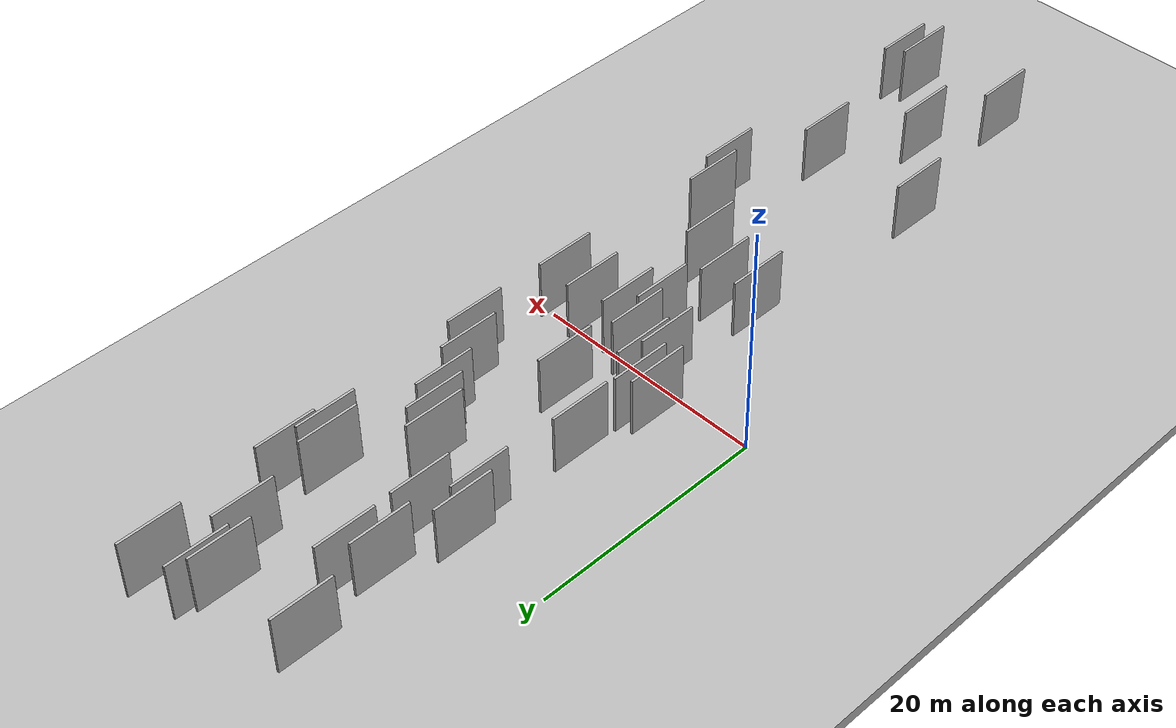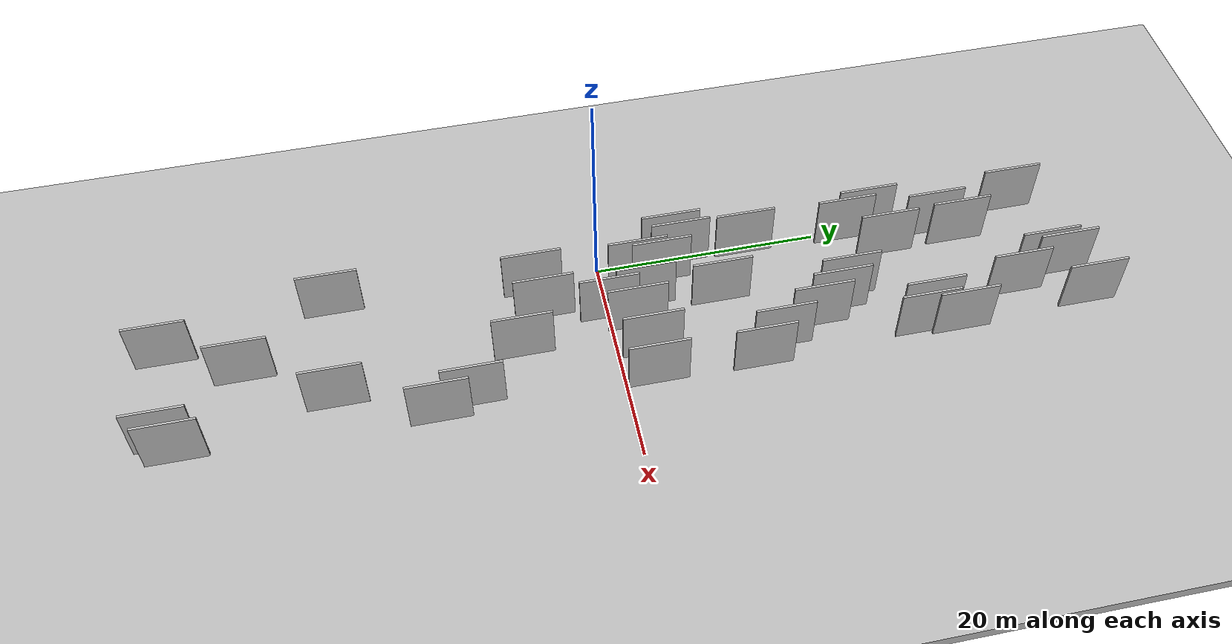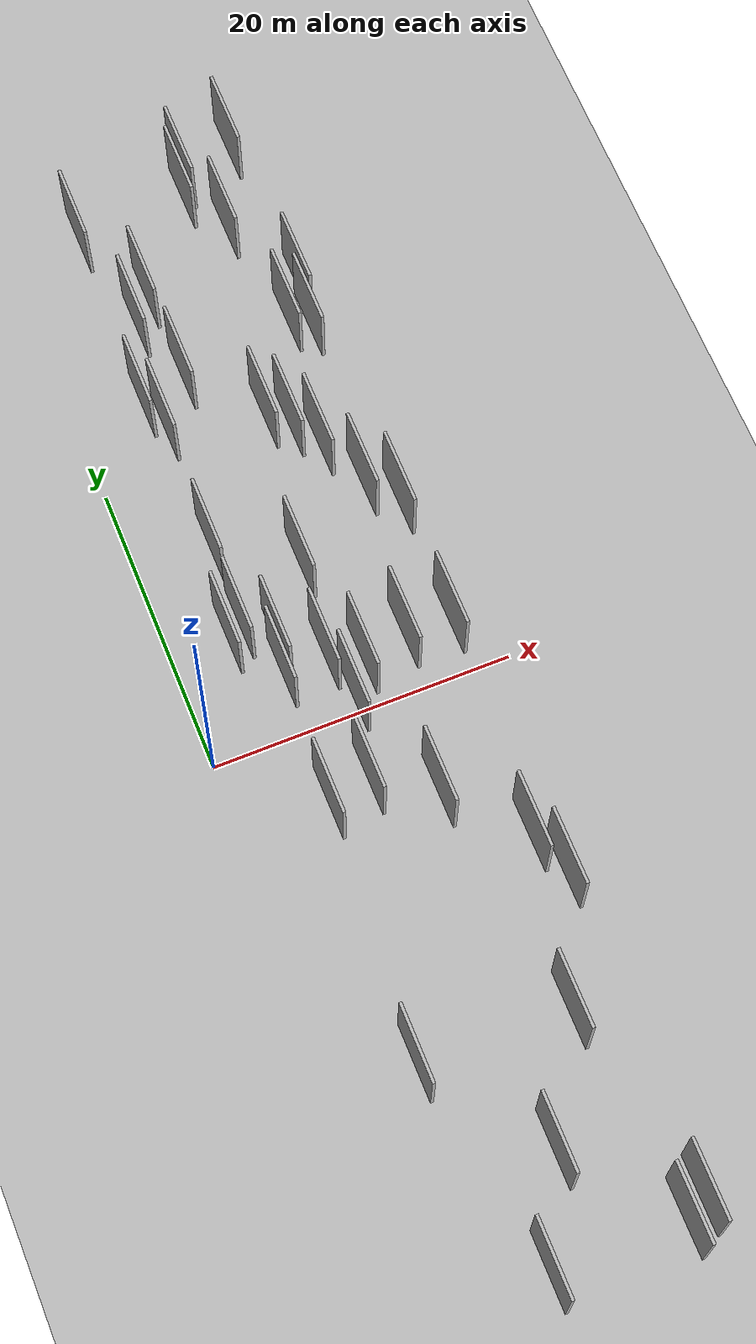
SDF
<?xml version="1.0" encoding="utf-8"?>

<sdf version="1.6">

   <world name="default">

      <gui fullscreen="0">

         <camera name="user_camera">

            <pose>-15 0 4.57585 0 0 0</pose>

            <view_controller>orbit</view_controller>

         </camera>

      </gui>

      <scene>

         <sky>

           <clouds>

             <speed>12</speed>

           </clouds>

         </sky>

         <ambient>0.4 0.4 0.4 1</ambient>

         <background>0.7 0.7 0.7 1</background>

         <shadows>1</shadows>

      </scene>

      <gravity>0 0 -9.8066</gravity>

      <magnetic_field>6e-06 2.3e-05 -4.2e-05</magnetic_field>

      <physics default="0" name="default_physics" type="ode">

         <ode>

            <solver>

               <type>quick</type>

               <iters>10</iters>

               <sor>1.0</sor>

               <use_dynamic_moi_rescaling>0</use_dynamic_moi_rescaling>

            </solver>

            <constraints>

               <cfm>0</cfm>

               <erp>0.2</erp>

               <contact_max_correcting_vel>100</contact_max_correcting_vel>

               <contact_surface_layer>0.001</contact_surface_layer>

            </constraints>

         </ode>

         <max_step_size>0.004</max_step_size>

         <real_time_factor>1</real_time_factor>

         <real_time_update_rate>250</real_time_update_rate>

      </physics>

      <light name="sun" type="directional">

         <cast_shadows>1</cast_shadows>

         <pose>0 0 10 0 0 0</pose>

         <diffuse>0.8 0.8 0.8 1</diffuse>

         <specular>0.2 0.2 0.2 1</specular>

         <attenuation>

            <range>1000</range>

            <constant>0.9</constant>

            <linear>0.01</linear>

            <quadratic>0.001</quadratic>

         </attenuation>

         <direction>-0.5 0.1 -0.9</direction>

      </light>

      <include>

         <name>ground_plane_1</name>

         <uri>model://HANNAS_ground_plane</uri>

         <pose>0 0 0  0 0 0</pose>

      </include>

      <include>

         <name>ground_plane_2</name>

         <uri>model://HANNAS_ground_plane</uri>

         <pose>100 0 0  0 0 0</pose>

      </include>

      <model name="HANNAS_wall_1">

         <static>1</static>

         <pose frame="">16.1266 -36.1026 5.0 0.000000 0.000000 1.570796</pose>

         <link name="link">

            <pose frame="">0 0 2.50 0 0 0</pose>

            <collision name="collision">

               <geometry>

                  <box>

                     <size>5.00 0.2 5.00</size>

                  </box>

               </geometry>

               <max_contacts>10</max_contacts>

               <surface>

                  <contact>

                     <ode/>

                  </contact>

                  <bounce/>

                  <friction>

                     <torsional>

                        <ode/>

                     </torsional>

                     <ode/>

                  </friction>

               </surface>

            </collision>

            <visual name="visual">

               <cast_shadows>0</cast_shadows>

               <geometry>

                  <box>

                     <size>5.00 0.2 5.00</size>

                  </box>

               </geometry>

               <material>

                  <script>

                     <uri>model://HANNAS_wall/materials/scripts</uri>

                     <uri>model://HANNAS_wall/materials/textures</uri>

                     <name>vrc/HANNAS_wall</name>

                  </script>

               </material>

            </visual>

            <self_collide>0</self_collide>

            <enable_wind>0</enable_wind>

            <kinematic>0</kinematic>

         </link>

      </model>

      <model name="HANNAS_wall_2">

         <static>1</static>

         <pose frame="">16.7038 10.5861 5.0 0.000000 0.000000 1.570796</pose>

         <link name="link">

            <pose frame="">0 0 2.50 0 0 0</pose>

            <collision name="collision">

               <geometry>

                  <box>

                     <size>5.00 0.2 5.00</size>

                  </box>

               </geometry>

               <max_contacts>10</max_contacts>

               <surface>

                  <contact>

                     <ode/>

                  </contact>

                  <bounce/>

                  <friction>

                     <torsional>

                        <ode/>

                     </torsional>

                     <ode/>

                  </friction>

               </surface>

            </collision>

            <visual name="visual">

               <cast_shadows>0</cast_shadows>

               <geometry>

                  <box>

                     <size>5.00 0.2 5.00</size>

                  </box>

               </geometry>

               <material>

                  <script>

                     <uri>model://HANNAS_wall/materials/scripts</uri>

                     <uri>model://HANNAS_wall/materials/textures</uri>

                     <name>vrc/HANNAS_wall</name>

                  </script>

               </material>

            </visual>

            <self_collide>0</self_collide>

            <enable_wind>0</enable_wind>

            <kinematic>0</kinematic>

         </link>

      </model>

      <model name="HANNAS_wall_3">

         <static>1</static>

         <pose frame="">4.0169 -23.0541 5.0 0.000000 0.000000 1.570796</pose>

         <link name="link">

            <pose frame="">0 0 2.50 0 0 0</pose>

            <collision name="collision">

               <geometry>

                  <box>

                     <size>5.00 0.2 5.00</size>

                  </box>

               </geometry>

               <max_contacts>10</max_contacts>

               <surface>

                  <contact>

                     <ode/>

                  </contact>

                  <bounce/>

                  <friction>

                     <torsional>

                        <ode/>

                     </torsional>

                     <ode/>

                  </friction>

               </surface>

            </collision>

            <visual name="visual">

               <cast_shadows>0</cast_shadows>

               <geometry>

                  <box>

                     <size>5.00 0.2 5.00</size>

                  </box>

               </geometry>

               <material>

                  <script>

                     <uri>model://HANNAS_wall/materials/scripts</uri>

                     <uri>model://HANNAS_wall/materials/textures</uri>

                     <name>vrc/HANNAS_wall</name>

                  </script>

               </material>

            </visual>

            <self_collide>0</self_collide>

            <enable_wind>0</enable_wind>

            <kinematic>0</kinematic>

         </link>

      </model>

      <model name="HANNAS_wall_4">

         <static>1</static>

         <pose frame="">8.0384 -5.8655 5.0 0.000000 0.000000 1.570796</pose>

         <link name="link">

            <pose frame="">0 0 2.50 0 0 0</pose>

            <collision name="collision">

               <geometry>

                  <box>

                     <size>5.00 0.2 5.00</size>

                  </box>

               </geometry>

               <max_contacts>10</max_contacts>

               <surface>

                  <contact>

                     <ode/>

                  </contact>

                  <bounce/>

                  <friction>

                     <torsional>

                        <ode/>

                     </torsional>

                     <ode/>

                  </friction>

               </surface>

            </collision>

            <visual name="visual">

               <cast_shadows>0</cast_shadows>

               <geometry>

                  <box>

                     <size>5.00 0.2 5.00</size>

                  </box>

               </geometry>

               <material>

                  <script>

                     <uri>model://HANNAS_wall/materials/scripts</uri>

                     <uri>model://HANNAS_wall/materials/textures</uri>

                     <name>vrc/HANNAS_wall</name>

                  </script>

               </material>

            </visual>

            <self_collide>0</self_collide>

            <enable_wind>0</enable_wind>

            <kinematic>0</kinematic>

         </link>

      </model>

      <model name="HANNAS_wall_5">

         <static>1</static>

         <pose frame="">13.6140 33.2601 5.0 0.000000 0.000000 1.570796</pose>

         <link name="link">

            <pose frame="">0 0 2.50 0 0 0</pose>

            <collision name="collision">

               <geometry>

                  <box>

                     <size>5.00 0.2 5.00</size>

                  </box>

               </geometry>

               <max_contacts>10</max_contacts>

               <surface>

                  <contact>

                     <ode/>

                  </contact>

                  <bounce/>

                  <friction>

                     <torsional>

                        <ode/>

                     </torsional>

                     <ode/>

                  </friction>

               </surface>

            </collision>

            <visual name="visual">

               <cast_shadows>0</cast_shadows>

               <geometry>

                  <box>

                     <size>5.00 0.2 5.00</size>

                  </box>

               </geometry>

               <material>

                  <script>

                     <uri>model://HANNAS_wall/materials/scripts</uri>

                     <uri>model://HANNAS_wall/materials/textures</uri>

                     <name>vrc/HANNAS_wall</name>

                  </script>

               </material>

            </visual>

            <self_collide>0</self_collide>

            <enable_wind>0</enable_wind>

            <kinematic>0</kinematic>

         </link>

      </model>

      <model name="HANNAS_wall_6">

         <static>1</static>

         <pose frame="">11.8164 36.4727 5.0 0.000000 0.000000 1.570796</pose>

         <link name="link">

            <pose frame="">0 0 2.50 0 0 0</pose>

            <collision name="collision">

               <geometry>

                  <box>

                     <size>5.00 0.2 5.00</size>

                  </box>

               </geometry>

               <max_contacts>10</max_contacts>

               <surface>

                  <contact>

                     <ode/>

                  </contact>

                  <bounce/>

                  <friction>

                     <torsional>

                        <ode/>

                     </torsional>

                     <ode/>

                  </friction>

               </surface>

            </collision>

            <visual name="visual">

               <cast_shadows>0</cast_shadows>

               <geometry>

                  <box>

                     <size>5.00 0.2 5.00</size>

                  </box>

               </geometry>

               <material>

                  <script>

                     <uri>model://HANNAS_wall/materials/scripts</uri>

                     <uri>model://HANNAS_wall/materials/textures</uri>

                     <name>vrc/HANNAS_wall</name>

                  </script>

               </material>

            </visual>

            <self_collide>0</self_collide>

            <enable_wind>0</enable_wind>

            <kinematic>0</kinematic>

         </link>

      </model>

      <model name="HANNAS_wall_7">

         <static>1</static>

         <pose frame="">13.5717 2.0889 5.0 0.000000 0.000000 1.570796</pose>

         <link name="link">

            <pose frame="">0 0 2.50 0 0 0</pose>

            <collision name="collision">

               <geometry>

                  <box>

                     <size>5.00 0.2 5.00</size>

                  </box>

               </geometry>

               <max_contacts>10</max_contacts>

               <surface>

                  <contact>

                     <ode/>

                  </contact>

                  <bounce/>

                  <friction>

                     <torsional>

                        <ode/>

                     </torsional>

                     <ode/>

                  </friction>

               </surface>

            </collision>

            <visual name="visual">

               <cast_shadows>0</cast_shadows>

               <geometry>

                  <box>

                     <size>5.00 0.2 5.00</size>

                  </box>

               </geometry>

               <material>

                  <script>

                     <uri>model://HANNAS_wall/materials/scripts</uri>

                     <uri>model://HANNAS_wall/materials/textures</uri>

                     <name>vrc/HANNAS_wall</name>

                  </script>

               </material>

            </visual>

            <self_collide>0</self_collide>

            <enable_wind>0</enable_wind>

            <kinematic>0</kinematic>

         </link>

      </model>

      <model name="HANNAS_wall_8">

         <static>1</static>

         <pose frame="">14.9016 25.2825 5.0 0.000000 0.000000 1.570796</pose>

         <link name="link">

            <pose frame="">0 0 2.50 0 0 0</pose>

            <collision name="collision">

               <geometry>

                  <box>

                     <size>5.00 0.2 5.00</size>

                  </box>

               </geometry>

               <max_contacts>10</max_contacts>

               <surface>

                  <contact>

                     <ode/>

                  </contact>

                  <bounce/>

                  <friction>

                     <torsional>

                        <ode/>

                     </torsional>

                     <ode/>

                  </friction>

               </surface>

            </collision>

            <visual name="visual">

               <cast_shadows>0</cast_shadows>

               <geometry>

                  <box>

                     <size>5.00 0.2 5.00</size>

                  </box>

               </geometry>

               <material>

                  <script>

                     <uri>model://HANNAS_wall/materials/scripts</uri>

                     <uri>model://HANNAS_wall/materials/textures</uri>

                     <name>vrc/HANNAS_wall</name>

                  </script>

               </material>

            </visual>

            <self_collide>0</self_collide>

            <enable_wind>0</enable_wind>

            <kinematic>0</kinematic>

         </link>

      </model>

      <model name="HANNAS_wall_9">

         <static>1</static>

         <pose frame="">4.8498 20.8579 5.0 0.000000 0.000000 1.570796</pose>

         <link name="link">

            <pose frame="">0 0 2.50 0 0 0</pose>

            <collision name="collision">

               <geometry>

                  <box>

                     <size>5.00 0.2 5.00</size>

                  </box>

               </geometry>

               <max_contacts>10</max_contacts>

               <surface>

                  <contact>

                     <ode/>

                  </contact>

                  <bounce/>

                  <friction>

                     <torsional>

                        <ode/>

                     </torsional>

                     <ode/>

                  </friction>

               </surface>

            </collision>

            <visual name="visual">

               <cast_shadows>0</cast_shadows>

               <geometry>

                  <box>

                     <size>5.00 0.2 5.00</size>

                  </box>

               </geometry>

               <material>

                  <script>

                     <uri>model://HANNAS_wall/materials/scripts</uri>

                     <uri>model://HANNAS_wall/materials/textures</uri>

                     <name>vrc/HANNAS_wall</name>

                  </script>

               </material>

            </visual>

            <self_collide>0</self_collide>

            <enable_wind>0</enable_wind>

            <kinematic>0</kinematic>

         </link>

      </model>

      <model name="HANNAS_wall_10">

         <static>1</static>

         <pose frame="">11.6413 -8.1882 5.0 0.000000 0.000000 1.570796</pose>

         <link name="link">

            <pose frame="">0 0 2.50 0 0 0</pose>

            <collision name="collision">

               <geometry>

                  <box>

                     <size>5.00 0.2 5.00</size>

                  </box>

               </geometry>

               <max_contacts>10</max_contacts>

               <surface>

                  <contact>

                     <ode/>

                  </contact>

                  <bounce/>

                  <friction>

                     <torsional>

                        <ode/>

                     </torsional>

                     <ode/>

                  </friction>

               </surface>

            </collision>

            <visual name="visual">

               <cast_shadows>0</cast_shadows>

               <geometry>

                  <box>

                     <size>5.00 0.2 5.00</size>

                  </box>

               </geometry>

               <material>

                  <script>

                     <uri>model://HANNAS_wall/materials/scripts</uri>

                     <uri>model://HANNAS_wall/materials/textures</uri>

                     <name>vrc/HANNAS_wall</name>

                  </script>

               </material>

            </visual>

            <self_collide>0</self_collide>

            <enable_wind>0</enable_wind>

            <kinematic>0</kinematic>

         </link>

      </model>

      <model name="HANNAS_wall_11">

         <static>1</static>

         <pose frame="">14.7778 -36.9344 5.0 0.000000 0.000000 1.570796</pose>

         <link name="link">

            <pose frame="">0 0 2.50 0 0 0</pose>

            <collision name="collision">

               <geometry>

                  <box>

                     <size>5.00 0.2 5.00</size>

                  </box>

               </geometry>

               <max_contacts>10</max_contacts>

               <surface>

                  <contact>

                     <ode/>

                  </contact>

                  <bounce/>

                  <friction>

                     <torsional>

                        <ode/>

                     </torsional>

                     <ode/>

                  </friction>

               </surface>

            </collision>

            <visual name="visual">

               <cast_shadows>0</cast_shadows>

               <geometry>

                  <box>

                     <size>5.00 0.2 5.00</size>

                  </box>

               </geometry>

               <material>

                  <script>

                     <uri>model://HANNAS_wall/materials/scripts</uri>

                     <uri>model://HANNAS_wall/materials/textures</uri>

                     <name>vrc/HANNAS_wall</name>

                  </script>

               </material>

            </visual>

            <self_collide>0</self_collide>

            <enable_wind>0</enable_wind>

            <kinematic>0</kinematic>

         </link>

      </model>

      <model name="HANNAS_wall_12">

         <static>1</static>

         <pose frame="">4.3469 35.8482 5.0 0.000000 0.000000 1.570796</pose>

         <link name="link">

            <pose frame="">0 0 2.50 0 0 0</pose>

            <collision name="collision">

               <geometry>

                  <box>

                     <size>5.00 0.2 5.00</size>

                  </box>

               </geometry>

               <max_contacts>10</max_contacts>

               <surface>

                  <contact>

                     <ode/>

                  </contact>

                  <bounce/>

                  <friction>

                     <torsional>

                        <ode/>

                     </torsional>

                     <ode/>

                  </friction>

               </surface>

            </collision>

            <visual name="visual">

               <cast_shadows>0</cast_shadows>

               <geometry>

                  <box>

                     <size>5.00 0.2 5.00</size>

                  </box>

               </geometry>

               <material>

                  <script>

                     <uri>model://HANNAS_wall/materials/scripts</uri>

                     <uri>model://HANNAS_wall/materials/textures</uri>

                     <name>vrc/HANNAS_wall</name>

                  </script>

               </material>

            </visual>

            <self_collide>0</self_collide>

            <enable_wind>0</enable_wind>

            <kinematic>0</kinematic>

         </link>

      </model>

      <model name="HANNAS_wall_13">

         <static>1</static>

         <pose frame="">8.5442 2.5810 5.0 0.000000 0.000000 1.570796</pose>

         <link name="link">

            <pose frame="">0 0 2.50 0 0 0</pose>

            <collision name="collision">

               <geometry>

                  <box>

                     <size>5.00 0.2 5.00</size>

                  </box>

               </geometry>

               <max_contacts>10</max_contacts>

               <surface>

                  <contact>

                     <ode/>

                  </contact>

                  <bounce/>

                  <friction>

                     <torsional>

                        <ode/>

                     </torsional>

                     <ode/>

                  </friction>

               </surface>

            </collision>

            <visual name="visual">

               <cast_shadows>0</cast_shadows>

               <geometry>

                  <box>

                     <size>5.00 0.2 5.00</size>

                  </box>

               </geometry>

               <material>

                  <script>

                     <uri>model://HANNAS_wall/materials/scripts</uri>

                     <uri>model://HANNAS_wall/materials/textures</uri>

                     <name>vrc/HANNAS_wall</name>

                  </script>

               </material>

            </visual>

            <self_collide>0</self_collide>

            <enable_wind>0</enable_wind>

            <kinematic>0</kinematic>

         </link>

      </model>

      <model name="HANNAS_wall_14">

         <static>1</static>

         <pose frame="">15.6510 -12.7972 5.0 0.000000 0.000000 1.570796</pose>

         <link name="link">

            <pose frame="">0 0 2.50 0 0 0</pose>

            <collision name="collision">

               <geometry>

                  <box>

                     <size>5.00 0.2 5.00</size>

                  </box>

               </geometry>

               <max_contacts>10</max_contacts>

               <surface>

                  <contact>

                     <ode/>

                  </contact>

                  <bounce/>

                  <friction>

                     <torsional>

                        <ode/>

                     </torsional>

                     <ode/>

                  </friction>

               </surface>

            </collision>

            <visual name="visual">

               <cast_shadows>0</cast_shadows>

               <geometry>

                  <box>

                     <size>5.00 0.2 5.00</size>

                  </box>

               </geometry>

               <material>

                  <script>

                     <uri>model://HANNAS_wall/materials/scripts</uri>

                     <uri>model://HANNAS_wall/materials/textures</uri>

                     <name>vrc/HANNAS_wall</name>

                  </script>

               </material>

            </visual>

            <self_collide>0</self_collide>

            <enable_wind>0</enable_wind>

            <kinematic>0</kinematic>

         </link>

      </model>

      <model name="HANNAS_wall_15">

         <static>1</static>

         <pose frame="">12.2945 18.1889 5.0 0.000000 0.000000 1.570796</pose>

         <link name="link">

            <pose frame="">0 0 2.50 0 0 0</pose>

            <collision name="collision">

               <geometry>

                  <box>

                     <size>5.00 0.2 5.00</size>

                  </box>

               </geometry>

               <max_contacts>10</max_contacts>

               <surface>

                  <contact>

                     <ode/>

                  </contact>

                  <bounce/>

                  <friction>

                     <torsional>

                        <ode/>

                     </torsional>

                     <ode/>

                  </friction>

               </surface>

            </collision>

            <visual name="visual">

               <cast_shadows>0</cast_shadows>

               <geometry>

                  <box>

                     <size>5.00 0.2 5.00</size>

                  </box>

               </geometry>

               <material>

                  <script>

                     <uri>model://HANNAS_wall/materials/scripts</uri>

                     <uri>model://HANNAS_wall/materials/textures</uri>

                     <name>vrc/HANNAS_wall</name>

                  </script>

               </material>

            </visual>

            <self_collide>0</self_collide>

            <enable_wind>0</enable_wind>

            <kinematic>0</kinematic>

         </link>

      </model>

      <model name="HANNAS_wall_16">

         <static>1</static>

         <pose frame="">6.1222 4.4363 5.0 0.000000 0.000000 1.570796</pose>

         <link name="link">

            <pose frame="">0 0 2.50 0 0 0</pose>

            <collision name="collision">

               <geometry>

                  <box>

                     <size>5.00 0.2 5.00</size>

                  </box>

               </geometry>

               <max_contacts>10</max_contacts>

               <surface>

                  <contact>

                     <ode/>

                  </contact>

                  <bounce/>

                  <friction>

                     <torsional>

                        <ode/>

                     </torsional>

                     <ode/>

                  </friction>

               </surface>

            </collision>

            <visual name="visual">

               <cast_shadows>0</cast_shadows>

               <geometry>

                  <box>

                     <size>5.00 0.2 5.00</size>

                  </box>

               </geometry>

               <material>

                  <script>

                     <uri>model://HANNAS_wall/materials/scripts</uri>

                     <uri>model://HANNAS_wall/materials/textures</uri>

                     <name>vrc/HANNAS_wall</name>

                  </script>

               </material>

            </visual>

            <self_collide>0</self_collide>

            <enable_wind>0</enable_wind>

            <kinematic>0</kinematic>

         </link>

      </model>

      <model name="HANNAS_wall_17">

         <static>1</static>

         <pose frame="">9.3733 8.8212 5.0 0.000000 0.000000 1.570796</pose>

         <link name="link">

            <pose frame="">0 0 2.50 0 0 0</pose>

            <collision name="collision">

               <geometry>

                  <box>

                     <size>5.00 0.2 5.00</size>

                  </box>

               </geometry>

               <max_contacts>10</max_contacts>

               <surface>

                  <contact>

                     <ode/>

                  </contact>

                  <bounce/>

                  <friction>

                     <torsional>

                        <ode/>

                     </torsional>

                     <ode/>

                  </friction>

               </surface>

            </collision>

            <visual name="visual">

               <cast_shadows>0</cast_shadows>

               <geometry>

                  <box>

                     <size>5.00 0.2 5.00</size>

                  </box>

               </geometry>

               <material>

                  <script>

                     <uri>model://HANNAS_wall/materials/scripts</uri>

                     <uri>model://HANNAS_wall/materials/textures</uri>

                     <name>vrc/HANNAS_wall</name>

                  </script>

               </material>

            </visual>

            <self_collide>0</self_collide>

            <enable_wind>0</enable_wind>

            <kinematic>0</kinematic>

         </link>

      </model>

      <model name="HANNAS_wall_18">

         <static>1</static>

         <pose frame="">10.6159 1.4685 5.0 0.000000 0.000000 1.570796</pose>

         <link name="link">

            <pose frame="">0 0 2.50 0 0 0</pose>

            <collision name="collision">

               <geometry>

                  <box>

                     <size>5.00 0.2 5.00</size>

                  </box>

               </geometry>

               <max_contacts>10</max_contacts>

               <surface>

                  <contact>

                     <ode/>

                  </contact>

                  <bounce/>

                  <friction>

                     <torsional>

                        <ode/>

                     </torsional>

                     <ode/>

                  </friction>

               </surface>

            </collision>

            <visual name="visual">

               <cast_shadows>0</cast_shadows>

               <geometry>

                  <box>

                     <size>5.00 0.2 5.00</size>

                  </box>

               </geometry>

               <material>

                  <script>

                     <uri>model://HANNAS_wall/materials/scripts</uri>

                     <uri>model://HANNAS_wall/materials/textures</uri>

                     <name>vrc/HANNAS_wall</name>

                  </script>

               </material>

            </visual>

            <self_collide>0</self_collide>

            <enable_wind>0</enable_wind>

            <kinematic>0</kinematic>

         </link>

      </model>

      <model name="HANNAS_wall_19">

         <static>1</static>

         <pose frame="">7.0047 30.3213 5.0 0.000000 0.000000 1.570796</pose>

         <link name="link">

            <pose frame="">0 0 2.50 0 0 0</pose>

            <collision name="collision">

               <geometry>

                  <box>

                     <size>5.00 0.2 5.00</size>

                  </box>

               </geometry>

               <max_contacts>10</max_contacts>

               <surface>

                  <contact>

                     <ode/>

                  </contact>

                  <bounce/>

                  <friction>

                     <torsional>

                        <ode/>

                     </torsional>

                     <ode/>

                  </friction>

               </surface>

            </collision>

            <visual name="visual">

               <cast_shadows>0</cast_shadows>

               <geometry>

                  <box>

                     <size>5.00 0.2 5.00</size>

                  </box>

               </geometry>

               <material>

                  <script>

                     <uri>model://HANNAS_wall/materials/scripts</uri>

                     <uri>model://HANNAS_wall/materials/textures</uri>

                     <name>vrc/HANNAS_wall</name>

                  </script>

               </material>

            </visual>

            <self_collide>0</self_collide>

            <enable_wind>0</enable_wind>

            <kinematic>0</kinematic>

         </link>

      </model>

      <model name="HANNAS_wall_20">

         <static>1</static>

         <pose frame="">16.1116 24.4967 5.0 0.000000 0.000000 1.570796</pose>

         <link name="link">

            <pose frame="">0 0 2.50 0 0 0</pose>

            <collision name="collision">

               <geometry>

                  <box>

                     <size>5.00 0.2 5.00</size>

                  </box>

               </geometry>

               <max_contacts>10</max_contacts>

               <surface>

                  <contact>

                     <ode/>

                  </contact>

                  <bounce/>

                  <friction>

                     <torsional>

                        <ode/>

                     </torsional>

                     <ode/>

                  </friction>

               </surface>

            </collision>

            <visual name="visual">

               <cast_shadows>0</cast_shadows>

               <geometry>

                  <box>

                     <size>5.00 0.2 5.00</size>

                  </box>

               </geometry>

               <material>

                  <script>

                     <uri>model://HANNAS_wall/materials/scripts</uri>

                     <uri>model://HANNAS_wall/materials/textures</uri>

                     <name>vrc/HANNAS_wall</name>

                  </script>

               </material>

            </visual>

            <self_collide>0</self_collide>

            <enable_wind>0</enable_wind>

            <kinematic>0</kinematic>

         </link>

      </model>

      <model name="HANNAS_wall_21">

         <static>1</static>

         <pose frame="">16.5672 1.9388 5.0 0.000000 0.000000 1.570796</pose>

         <link name="link">

            <pose frame="">0 0 2.50 0 0 0</pose>

            <collision name="collision">

               <geometry>

                  <box>

                     <size>5.00 0.2 5.00</size>

                  </box>

               </geometry>

               <max_contacts>10</max_contacts>

               <surface>

                  <contact>

                     <ode/>

                  </contact>

                  <bounce/>

                  <friction>

                     <torsional>

                        <ode/>

                     </torsional>

                     <ode/>

                  </friction>

               </surface>

            </collision>

            <visual name="visual">

               <cast_shadows>0</cast_shadows>

               <geometry>

                  <box>

                     <size>5.00 0.2 5.00</size>

                  </box>

               </geometry>

               <material>

                  <script>

                     <uri>model://HANNAS_wall/materials/scripts</uri>

                     <uri>model://HANNAS_wall/materials/textures</uri>

                     <name>vrc/HANNAS_wall</name>

                  </script>

               </material>

            </visual>

            <self_collide>0</self_collide>

            <enable_wind>0</enable_wind>

            <kinematic>0</kinematic>

         </link>

      </model>

      <model name="HANNAS_wall_22">

         <static>1</static>

         <pose frame="">4.5802 12.0188 5.0 0.000000 0.000000 1.570796</pose>

         <link name="link">

            <pose frame="">0 0 2.50 0 0 0</pose>

            <collision name="collision">

               <geometry>

                  <box>

                     <size>5.00 0.2 5.00</size>

                  </box>

               </geometry>

               <max_contacts>10</max_contacts>

               <surface>

                  <contact>

                     <ode/>

                  </contact>

                  <bounce/>

                  <friction>

                     <torsional>

                        <ode/>

                     </torsional>

                     <ode/>

                  </friction>

               </surface>

            </collision>

            <visual name="visual">

               <cast_shadows>0</cast_shadows>

               <geometry>

                  <box>

                     <size>5.00 0.2 5.00</size>

                  </box>

               </geometry>

               <material>

                  <script>

                     <uri>model://HANNAS_wall/materials/scripts</uri>

                     <uri>model://HANNAS_wall/materials/textures</uri>

                     <name>vrc/HANNAS_wall</name>

                  </script>

               </material>

            </visual>

            <self_collide>0</self_collide>

            <enable_wind>0</enable_wind>

            <kinematic>0</kinematic>

         </link>

      </model>

      <model name="HANNAS_wall_23">

         <static>1</static>

         <pose frame="">5.6724 28.5549 5.0 0.000000 0.000000 1.570796</pose>

         <link name="link">

            <pose frame="">0 0 2.50 0 0 0</pose>

            <collision name="collision">

               <geometry>

                  <box>

                     <size>5.00 0.2 5.00</size>

                  </box>

               </geometry>

               <max_contacts>10</max_contacts>

               <surface>

                  <contact>

                     <ode/>

                  </contact>

                  <bounce/>

                  <friction>

                     <torsional>

                        <ode/>

                     </torsional>

                     <ode/>

                  </friction>

               </surface>

            </collision>

            <visual name="visual">

               <cast_shadows>0</cast_shadows>

               <geometry>

                  <box>

                     <size>5.00 0.2 5.00</size>

                  </box>

               </geometry>

               <material>

                  <script>

                     <uri>model://HANNAS_wall/materials/scripts</uri>

                     <uri>model://HANNAS_wall/materials/textures</uri>

                     <name>vrc/HANNAS_wall</name>

                  </script>

               </material>

            </visual>

            <self_collide>0</self_collide>

            <enable_wind>0</enable_wind>

            <kinematic>0</kinematic>

         </link>

      </model>

      <model name="HANNAS_wall_24">

         <static>1</static>

         <pose frame="">7.1501 23.9227 5.0 0.000000 0.000000 1.570796</pose>

         <link name="link">

            <pose frame="">0 0 2.50 0 0 0</pose>

            <collision name="collision">

               <geometry>

                  <box>

                     <size>5.00 0.2 5.00</size>

                  </box>

               </geometry>

               <max_contacts>10</max_contacts>

               <surface>

                  <contact>

                     <ode/>

                  </contact>

                  <bounce/>

                  <friction>

                     <torsional>

                        <ode/>

                     </torsional>

                     <ode/>

                  </friction>

               </surface>

            </collision>

            <visual name="visual">

               <cast_shadows>0</cast_shadows>

               <geometry>

                  <box>

                     <size>5.00 0.2 5.00</size>

                  </box>

               </geometry>

               <material>

                  <script>

                     <uri>model://HANNAS_wall/materials/scripts</uri>

                     <uri>model://HANNAS_wall/materials/textures</uri>

                     <name>vrc/HANNAS_wall</name>

                  </script>

               </material>

            </visual>

            <self_collide>0</self_collide>

            <enable_wind>0</enable_wind>

            <kinematic>0</kinematic>

         </link>

      </model>

      <model name="HANNAS_wall_25">

         <static>1</static>

         <pose frame="">9.1840 -0.5984 5.0 0.000000 0.000000 1.570796</pose>

         <link name="link">

            <pose frame="">0 0 2.50 0 0 0</pose>

            <collision name="collision">

               <geometry>

                  <box>

                     <size>5.00 0.2 5.00</size>

                  </box>

               </geometry>

               <max_contacts>10</max_contacts>

               <surface>

                  <contact>

                     <ode/>

                  </contact>

                  <bounce/>

                  <friction>

                     <torsional>

                        <ode/>

                     </torsional>

                     <ode/>

                  </friction>

               </surface>

            </collision>

            <visual name="visual">

               <cast_shadows>0</cast_shadows>

               <geometry>

                  <box>

                     <size>5.00 0.2 5.00</size>

                  </box>

               </geometry>

               <material>

                  <script>

                     <uri>model://HANNAS_wall/materials/scripts</uri>

                     <uri>model://HANNAS_wall/materials/textures</uri>

                     <name>vrc/HANNAS_wall</name>

                  </script>

               </material>

            </visual>

            <self_collide>0</self_collide>

            <enable_wind>0</enable_wind>

            <kinematic>0</kinematic>

         </link>

      </model>

      <model name="HANNAS_wall_26">

         <static>1</static>

         <pose frame="">3.4132 5.8115 5.0 0.000000 0.000000 1.570796</pose>

         <link name="link">

            <pose frame="">0 0 2.50 0 0 0</pose>

            <collision name="collision">

               <geometry>

                  <box>

                     <size>5.00 0.2 5.00</size>

                  </box>

               </geometry>

               <max_contacts>10</max_contacts>

               <surface>

                  <contact>

                     <ode/>

                  </contact>

                  <bounce/>

                  <friction>

                     <torsional>

                        <ode/>

                     </torsional>

                     <ode/>

                  </friction>

               </surface>

            </collision>

            <visual name="visual">

               <cast_shadows>0</cast_shadows>

               <geometry>

                  <box>

                     <size>5.00 0.2 5.00</size>

                  </box>

               </geometry>

               <material>

                  <script>

                     <uri>model://HANNAS_wall/materials/scripts</uri>

                     <uri>model://HANNAS_wall/materials/textures</uri>

                     <name>vrc/HANNAS_wall</name>

                  </script>

               </material>

            </visual>

            <self_collide>0</self_collide>

            <enable_wind>0</enable_wind>

            <kinematic>0</kinematic>

         </link>

      </model>

      <model name="HANNAS_wall_27">

         <static>1</static>

         <pose frame="">11.0145 19.3353 5.0 0.000000 0.000000 1.570796</pose>

         <link name="link">

            <pose frame="">0 0 2.50 0 0 0</pose>

            <collision name="collision">

               <geometry>

                  <box>

                     <size>5.00 0.2 5.00</size>

                  </box>

               </geometry>

               <max_contacts>10</max_contacts>

               <surface>

                  <contact>

                     <ode/>

                  </contact>

                  <bounce/>

                  <friction>

                     <torsional>

                        <ode/>

                     </torsional>

                     <ode/>

                  </friction>

               </surface>

            </collision>

            <visual name="visual">

               <cast_shadows>0</cast_shadows>

               <geometry>

                  <box>

                     <size>5.00 0.2 5.00</size>

                  </box>

               </geometry>

               <material>

                  <script>

                     <uri>model://HANNAS_wall/materials/scripts</uri>

                     <uri>model://HANNAS_wall/materials/textures</uri>

                     <name>vrc/HANNAS_wall</name>

                  </script>

               </material>

            </visual>

            <self_collide>0</self_collide>

            <enable_wind>0</enable_wind>

            <kinematic>0</kinematic>

         </link>

      </model>

      <model name="HANNAS_wall_28">

         <static>1</static>

         <pose frame="">4.0725 22.9733 5.0 0.000000 0.000000 1.570796</pose>

         <link name="link">

            <pose frame="">0 0 2.50 0 0 0</pose>

            <collision name="collision">

               <geometry>

                  <box>

                     <size>5.00 0.2 5.00</size>

                  </box>

               </geometry>

               <max_contacts>10</max_contacts>

               <surface>

                  <contact>

                     <ode/>

                  </contact>

                  <bounce/>

                  <friction>

                     <torsional>

                        <ode/>

                     </torsional>

                     <ode/>

                  </friction>

               </surface>

            </collision>

            <visual name="visual">

               <cast_shadows>0</cast_shadows>

               <geometry>

                  <box>

                     <size>5.00 0.2 5.00</size>

                  </box>

               </geometry>

               <material>

                  <script>

                     <uri>model://HANNAS_wall/materials/scripts</uri>

                     <uri>model://HANNAS_wall/materials/textures</uri>

                     <name>vrc/HANNAS_wall</name>

                  </script>

               </material>

            </visual>

            <self_collide>0</self_collide>

            <enable_wind>0</enable_wind>

            <kinematic>0</kinematic>

         </link>

      </model>

      <model name="HANNAS_wall_29">

         <static>1</static>

         <pose frame="">5.7089 2.4742 5.0 0.000000 0.000000 1.570796</pose>

         <link name="link">

            <pose frame="">0 0 2.50 0 0 0</pose>

            <collision name="collision">

               <geometry>

                  <box>

                     <size>5.00 0.2 5.00</size>

                  </box>

               </geometry>

               <max_contacts>10</max_contacts>

               <surface>

                  <contact>

                     <ode/>

                  </contact>

                  <bounce/>

                  <friction>

                     <torsional>

                        <ode/>

                     </torsional>

                     <ode/>

                  </friction>

               </surface>

            </collision>

            <visual name="visual">

               <cast_shadows>0</cast_shadows>

               <geometry>

                  <box>

                     <size>5.00 0.2 5.00</size>

                  </box>

               </geometry>

               <material>

                  <script>

                     <uri>model://HANNAS_wall/materials/scripts</uri>

                     <uri>model://HANNAS_wall/materials/textures</uri>

                     <name>vrc/HANNAS_wall</name>

                  </script>

               </material>

            </visual>

            <self_collide>0</self_collide>

            <enable_wind>0</enable_wind>

            <kinematic>0</kinematic>

         </link>

      </model>

      <model name="HANNAS_wall_30">

         <static>1</static>

         <pose frame="">15.9378 38.8845 5.0 0.000000 0.000000 1.570796</pose>

         <link name="link">

            <pose frame="">0 0 2.50 0 0 0</pose>

            <collision name="collision">

               <geometry>

                  <box>

                     <size>5.00 0.2 5.00</size>

                  </box>

               </geometry>

               <max_contacts>10</max_contacts>

               <surface>

                  <contact>

                     <ode/>

                  </contact>

                  <bounce/>

                  <friction>

                     <torsional>

                        <ode/>

                     </torsional>

                     <ode/>

                  </friction>

               </surface>

            </collision>

            <visual name="visual">

               <cast_shadows>0</cast_shadows>

               <geometry>

                  <box>

                     <size>5.00 0.2 5.00</size>

                  </box>

               </geometry>

               <material>

                  <script>

                     <uri>model://HANNAS_wall/materials/scripts</uri>

                     <uri>model://HANNAS_wall/materials/textures</uri>

                     <name>vrc/HANNAS_wall</name>

                  </script>

               </material>

            </visual>

            <self_collide>0</self_collide>

            <enable_wind>0</enable_wind>

            <kinematic>0</kinematic>

         </link>

      </model>

      <model name="HANNAS_wall_31">

         <static>1</static>

         <pose frame="">16.6541 -15.6185 5.0 0.000000 0.000000 1.570796</pose>

         <link name="link">

            <pose frame="">0 0 2.50 0 0 0</pose>

            <collision name="collision">

               <geometry>

                  <box>

                     <size>5.00 0.2 5.00</size>

                  </box>

               </geometry>

               <max_contacts>10</max_contacts>

               <surface>

                  <contact>

                     <ode/>

                  </contact>

                  <bounce/>

                  <friction>

                     <torsional>

                        <ode/>

                     </torsional>

                     <ode/>

                  </friction>

               </surface>

            </collision>

            <visual name="visual">

               <cast_shadows>0</cast_shadows>

               <geometry>

                  <box>

                     <size>5.00 0.2 5.00</size>

                  </box>

               </geometry>

               <material>

                  <script>

                     <uri>model://HANNAS_wall/materials/scripts</uri>

                     <uri>model://HANNAS_wall/materials/textures</uri>

                     <name>vrc/HANNAS_wall</name>

                  </script>

               </material>

            </visual>

            <self_collide>0</self_collide>

            <enable_wind>0</enable_wind>

            <kinematic>0</kinematic>

         </link>

      </model>

      <model name="HANNAS_wall_32">

         <static>1</static>

         <pose frame="">13.5509 -23.4916 5.0 0.000000 0.000000 1.570796</pose>

         <link name="link">

            <pose frame="">0 0 2.50 0 0 0</pose>

            <collision name="collision">

               <geometry>

                  <box>

                     <size>5.00 0.2 5.00</size>

                  </box>

               </geometry>

               <max_contacts>10</max_contacts>

               <surface>

                  <contact>

                     <ode/>

                  </contact>

                  <bounce/>

                  <friction>

                     <torsional>

                        <ode/>

                     </torsional>

                     <ode/>

                  </friction>

               </surface>

            </collision>

            <visual name="visual">

               <cast_shadows>0</cast_shadows>

               <geometry>

                  <box>

                     <size>5.00 0.2 5.00</size>

                  </box>

               </geometry>

               <material>

                  <script>

                     <uri>model://HANNAS_wall/materials/scripts</uri>

                     <uri>model://HANNAS_wall/materials/textures</uri>

                     <name>vrc/HANNAS_wall</name>

                  </script>

               </material>

            </visual>

            <self_collide>0</self_collide>

            <enable_wind>0</enable_wind>

            <kinematic>0</kinematic>

         </link>

      </model>

      <model name="HANNAS_wall_33">

         <static>1</static>

         <pose frame="">15.0593 12.6275 5.0 0.000000 0.000000 1.570796</pose>

         <link name="link">

            <pose frame="">0 0 2.50 0 0 0</pose>

            <collision name="collision">

               <geometry>

                  <box>

                     <size>5.00 0.2 5.00</size>

                  </box>

               </geometry>

               <max_contacts>10</max_contacts>

               <surface>

                  <contact>

                     <ode/>

                  </contact>

                  <bounce/>

                  <friction>

                     <torsional>

                        <ode/>

                     </torsional>

                     <ode/>

                  </friction>

               </surface>

            </collision>

            <visual name="visual">

               <cast_shadows>0</cast_shadows>

               <geometry>

                  <box>

                     <size>5.00 0.2 5.00</size>

                  </box>

               </geometry>

               <material>

                  <script>

                     <uri>model://HANNAS_wall/materials/scripts</uri>

                     <uri>model://HANNAS_wall/materials/textures</uri>

                     <name>vrc/HANNAS_wall</name>

                  </script>

               </material>

            </visual>

            <self_collide>0</self_collide>

            <enable_wind>0</enable_wind>

            <kinematic>0</kinematic>

         </link>

      </model>

      <model name="HANNAS_wall_34">

         <static>1</static>

         <pose frame="">4.4309 6.4372 5.0 0.000000 0.000000 1.570796</pose>

         <link name="link">

            <pose frame="">0 0 2.50 0 0 0</pose>

            <collision name="collision">

               <geometry>

                  <box>

                     <size>5.00 0.2 5.00</size>

                  </box>

               </geometry>

               <max_contacts>10</max_contacts>

               <surface>

                  <contact>

                     <ode/>

                  </contact>

                  <bounce/>

                  <friction>

                     <torsional>

                        <ode/>

                     </torsional>

                     <ode/>

                  </friction>

               </surface>

            </collision>

            <visual name="visual">

               <cast_shadows>0</cast_shadows>

               <geometry>

                  <box>

                     <size>5.00 0.2 5.00</size>

                  </box>

               </geometry>

               <material>

                  <script>

                     <uri>model://HANNAS_wall/materials/scripts</uri>

                     <uri>model://HANNAS_wall/materials/textures</uri>

                     <name>vrc/HANNAS_wall</name>

                  </script>

               </material>

            </visual>

            <self_collide>0</self_collide>

            <enable_wind>0</enable_wind>

            <kinematic>0</kinematic>

         </link>

      </model>

      <model name="HANNAS_wall_35">

         <static>1</static>

         <pose frame="">16.4888 27.5898 5.0 0.000000 0.000000 1.570796</pose>

         <link name="link">

            <pose frame="">0 0 2.50 0 0 0</pose>

            <collision name="collision">

               <geometry>

                  <box>

                     <size>5.00 0.2 5.00</size>

                  </box>

               </geometry>

               <max_contacts>10</max_contacts>

               <surface>

                  <contact>

                     <ode/>

                  </contact>

                  <bounce/>

                  <friction>

                     <torsional>

                        <ode/>

                     </torsional>

                     <ode/>

                  </friction>

               </surface>

            </collision>

            <visual name="visual">

               <cast_shadows>0</cast_shadows>

               <geometry>

                  <box>

                     <size>5.00 0.2 5.00</size>

                  </box>

               </geometry>

               <material>

                  <script>

                     <uri>model://HANNAS_wall/materials/scripts</uri>

                     <uri>model://HANNAS_wall/materials/textures</uri>

                     <name>vrc/HANNAS_wall</name>

                  </script>

               </material>

            </visual>

            <self_collide>0</self_collide>

            <enable_wind>0</enable_wind>

            <kinematic>0</kinematic>

         </link>

      </model>

      <model name="HANNAS_wall_36">

         <static>1</static>

         <pose frame="">13.5435 16.2440 5.0 0.000000 0.000000 1.570796</pose>

         <link name="link">

            <pose frame="">0 0 2.50 0 0 0</pose>

            <collision name="collision">

               <geometry>

                  <box>

                     <size>5.00 0.2 5.00</size>

                  </box>

               </geometry>

               <max_contacts>10</max_contacts>

               <surface>

                  <contact>

                     <ode/>

                  </contact>

                  <bounce/>

                  <friction>

                     <torsional>

                        <ode/>

                     </torsional>

                     <ode/>

                  </friction>

               </surface>

            </collision>

            <visual name="visual">

               <cast_shadows>0</cast_shadows>

               <geometry>

                  <box>

                     <size>5.00 0.2 5.00</size>

                  </box>

               </geometry>

               <material>

                  <script>

                     <uri>model://HANNAS_wall/materials/scripts</uri>

                     <uri>model://HANNAS_wall/materials/textures</uri>

                     <name>vrc/HANNAS_wall</name>

                  </script>

               </material>

            </visual>

            <self_collide>0</self_collide>

            <enable_wind>0</enable_wind>

            <kinematic>0</kinematic>

         </link>

      </model>

      <model name="HANNAS_wall_37">

         <static>1</static>

         <pose frame="">6.4527 -36.8047 5.0 0.000000 0.000000 1.570796</pose>

         <link name="link">

            <pose frame="">0 0 2.50 0 0 0</pose>

            <collision name="collision">

               <geometry>

                  <box>

                     <size>5.00 0.2 5.00</size>

                  </box>

               </geometry>

               <max_contacts>10</max_contacts>

               <surface>

                  <contact>

                     <ode/>

                  </contact>

                  <bounce/>

                  <friction>

                     <torsional>

                        <ode/>

                     </torsional>

                     <ode/>

                  </friction>

               </surface>

            </collision>

            <visual name="visual">

               <cast_shadows>0</cast_shadows>

               <geometry>

                  <box>

                     <size>5.00 0.2 5.00</size>

                  </box>

               </geometry>

               <material>

                  <script>

                     <uri>model://HANNAS_wall/materials/scripts</uri>

                     <uri>model://HANNAS_wall/materials/textures</uri>

                     <name>vrc/HANNAS_wall</name>

                  </script>

               </material>

            </visual>

            <self_collide>0</self_collide>

            <enable_wind>0</enable_wind>

            <kinematic>0</kinematic>

         </link>

      </model>

      <model name="HANNAS_wall_38">

         <static>1</static>

         <pose frame="">9.4696 -30.6101 5.0 0.000000 0.000000 1.570796</pose>

         <link name="link">

            <pose frame="">0 0 2.50 0 0 0</pose>

            <collision name="collision">

               <geometry>

                  <box>

                     <size>5.00 0.2 5.00</size>

                  </box>

               </geometry>

               <max_contacts>10</max_contacts>

               <surface>

                  <contact>

                     <ode/>

                  </contact>

                  <bounce/>

                  <friction>

                     <torsional>

                        <ode/>

                     </torsional>

                     <ode/>

                  </friction>

               </surface>

            </collision>

            <visual name="visual">

               <cast_shadows>0</cast_shadows>

               <geometry>

                  <box>

                     <size>5.00 0.2 5.00</size>

                  </box>

               </geometry>

               <material>

                  <script>

                     <uri>model://HANNAS_wall/materials/scripts</uri>

                     <uri>model://HANNAS_wall/materials/textures</uri>

                     <name>vrc/HANNAS_wall</name>

                  </script>

               </material>

            </visual>

            <self_collide>0</self_collide>

            <enable_wind>0</enable_wind>

            <kinematic>0</kinematic>

         </link>

      </model>

      <model name="HANNAS_wall_39">

         <static>1</static>

         <pose frame="">5.2627 -6.4195 5.0 0.000000 0.000000 1.570796</pose>

         <link name="link">

            <pose frame="">0 0 2.50 0 0 0</pose>

            <collision name="collision">

               <geometry>

                  <box>

                     <size>5.00 0.2 5.00</size>

                  </box>

               </geometry>

               <max_contacts>10</max_contacts>

               <surface>

                  <contact>

                     <ode/>

                  </contact>

                  <bounce/>

                  <friction>

                     <torsional>

                        <ode/>

                     </torsional>

                     <ode/>

                  </friction>

               </surface>

            </collision>

            <visual name="visual">

               <cast_shadows>0</cast_shadows>

               <geometry>

                  <box>

                     <size>5.00 0.2 5.00</size>

                  </box>

               </geometry>

               <material>

                  <script>

                     <uri>model://HANNAS_wall/materials/scripts</uri>

                     <uri>model://HANNAS_wall/materials/textures</uri>

                     <name>vrc/HANNAS_wall</name>

                  </script>

               </material>

            </visual>

            <self_collide>0</self_collide>

            <enable_wind>0</enable_wind>

            <kinematic>0</kinematic>

         </link>

      </model>

      <model name="HANNAS_wall_40">

         <static>1</static>

         <pose frame="">12.3256 37.8524 5.0 0.000000 0.000000 1.570796</pose>

         <link name="link">

            <pose frame="">0 0 2.50 0 0 0</pose>

            <collision name="collision">

               <geometry>

                  <box>

                     <size>5.00 0.2 5.00</size>

                  </box>

               </geometry>

               <max_contacts>10</max_contacts>

               <surface>

                  <contact>

                     <ode/>

                  </contact>

                  <bounce/>

                  <friction>

                     <torsional>

                        <ode/>

                     </torsional>

                     <ode/>

                  </friction>

               </surface>

            </collision>

            <visual name="visual">

               <cast_shadows>0</cast_shadows>

               <geometry>

                  <box>

                     <size>5.00 0.2 5.00</size>

                  </box>

               </geometry>

               <material>

                  <script>

                     <uri>model://HANNAS_wall/materials/scripts</uri>

                     <uri>model://HANNAS_wall/materials/textures</uri>

                     <name>vrc/HANNAS_wall</name>

                  </script>

               </material>

            </visual>

            <self_collide>0</self_collide>

            <enable_wind>0</enable_wind>

            <kinematic>0</kinematic>

         </link>

      </model>

   </world>

</sdf>
